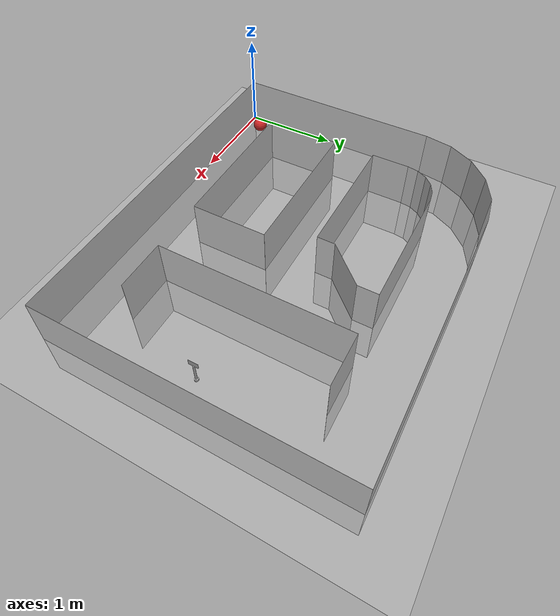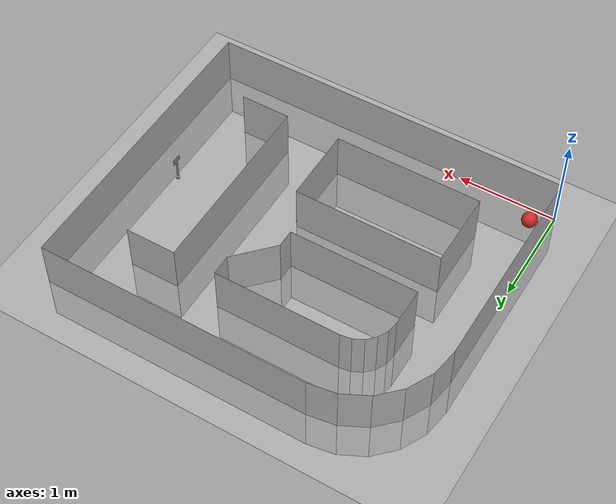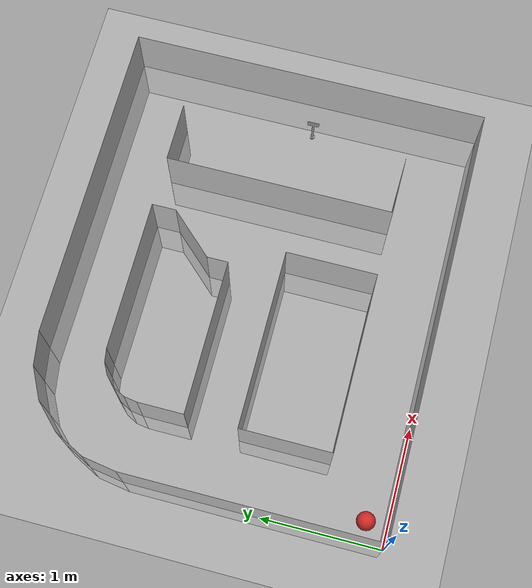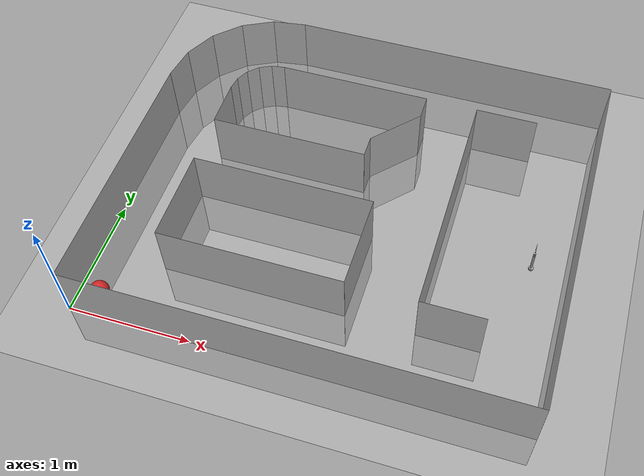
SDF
<sdf version="1.7">
 <world name="default">
  <light name="sun" type="directional">
   <pose>0 0 10 0 -0 0</pose>
   <diffuse>0.8 0.8 0.8 1</diffuse>
   <specular>0.1 0.1 0.1 1</specular>
   <attenuation>
    <range>1000</range>
    <constant>0.9</constant>
    <linear>0.01</linear>
    <quadratic>0.001</quadratic>
   </attenuation>
   <direction>-0.5 0.5 -1</direction>
   <spot><inner_angle>0</inner_angle><outer_angle>0</outer_angle><falloff>0</falloff></spot>
  </light>
  <model name="ground_plane">
   <static>1</static>
   <link name="link">
    <collision name="collision">
     <geometry><plane><normal>0 0 1</normal><size>100 100</size></plane></geometry>
     <surface><friction><ode><mu>100</mu><mu2>50</mu2></ode></friction></surface>
    </collision>
    <visual name="visual">
     <cast_shadows>0</cast_shadows>
     <geometry><plane><normal>0 0 1</normal><size>100 100</size></plane></geometry>
     <material>
      <script><uri>file://media/materials/scripts/gazebo.material</uri><name>Gazebo/Grey</name></script>
     </material>
    </visual>
   </link>
  </model>
  <model name="wall_0">
   <static>1</static>
   <link name="link">
    <collision name="collision"><geometry><box><size>2.1336 0.001 1</size></box></geometry></collision>
    <visual name="visual">
     <geometry><box><size>2.1336 0.001 1</size></box></geometry>
     <material>
      <script><name>Gazebo/White</name><uri>file://media/materials/scripts/gazebo.material</uri></script>
     </material>
    </visual>
   </link>
   <pose>0 1.0668 0 0 -0 1.5708</pose>
  </model>
  <model name="wall_1">
   <static>1</static>
   <link name="link">
    <collision name="collision"><geometry><box><size>0.286088 0.001 1</size></box></geometry></collision>
    <visual name="visual">
     <geometry><box><size>0.286088 0.001 1</size></box></geometry>
     <material>
      <script><name>Gazebo/White</name><uri>file://media/materials/scripts/gazebo.material</uri></script>
     </material>
    </visual>
   </link>
   <pose>0.022377 2.27489 0 0 -0 1.41372</pose>
  </model>
  <model name="wall_2">
   <static>1</static>
   <link name="link">
    <collision name="collision"><geometry><box><size>0.286088 0.001 1</size></box></geometry></collision>
    <visual name="visual">
     <geometry><box><size>0.286088 0.001 1</size></box></geometry>
     <material>
      <script><name>Gazebo/White</name><uri>file://media/materials/scripts/gazebo.material</uri></script>
     </material>
    </visual>
   </link>
   <pose>0.109695 2.54362 0 0 -0 1.09956</pose>
  </model>
  <model name="wall_3">
   <static>1</static>
   <link name="link">
    <collision name="collision"><geometry><box><size>0.286088 0.001 1</size></box></geometry></collision>
    <visual name="visual">
     <geometry><box><size>0.286088 0.001 1</size></box></geometry>
     <material>
      <script><name>Gazebo/White</name><uri>file://media/materials/scripts/gazebo.material</uri></script>
     </material>
    </visual>
   </link>
   <pose>0.275783 2.77222 0 0 -0 0.785398</pose>
  </model>
  <model name="wall_4">
   <static>1</static>
   <link name="link">
    <collision name="collision"><geometry><box><size>0.286088 0.001 1</size></box></geometry></collision>
    <visual name="visual">
     <geometry><box><size>0.286088 0.001 1</size></box></geometry>
     <material>
      <script><name>Gazebo/White</name><uri>file://media/materials/scripts/gazebo.material</uri></script>
     </material>
    </visual>
   </link>
   <pose>0.504383 2.93831 0 0 -0 0.471239</pose>
  </model>
  <model name="wall_5">
   <static>1</static>
   <link name="link">
    <collision name="collision"><geometry><box><size>0.286088 0.001 1</size></box></geometry></collision>
    <visual name="visual">
     <geometry><box><size>0.286088 0.001 1</size></box></geometry>
     <material>
      <script><name>Gazebo/White</name><uri>file://media/materials/scripts/gazebo.material</uri></script>
     </material>
    </visual>
   </link>
   <pose>0.773119 3.02563 0 0 -0 0.15708</pose>
  </model>
  <model name="wall_6">
   <static>1</static>
   <link name="link">
    <collision name="collision"><geometry><box><size>2.74321 0.001 1</size></box></geometry></collision>
    <visual name="visual">
     <geometry><box><size>2.74321 0.001 1</size></box></geometry>
     <material>
      <script><name>Gazebo/White</name><uri>file://media/materials/scripts/gazebo.material</uri></script>
     </material>
    </visual>
   </link>
   <pose>2.286 3.04801 0 0 -0 0</pose>
  </model>
  <model name="wall_7">
   <static>1</static>
   <link name="link">
    <collision name="collision"><geometry><box><size>3.04801 0.001 1</size></box></geometry></collision>
    <visual name="visual">
     <geometry><box><size>3.04801 0.001 1</size></box></geometry>
     <material>
      <script><name>Gazebo/White</name><uri>file://media/materials/scripts/gazebo.material</uri></script>
     </material>
    </visual>
   </link>
   <pose>3.65761 1.524 0 0 0 -1.5708</pose>
  </model>
  <model name="wall_8">
   <static>1</static>
   <link name="link">
    <collision name="collision"><geometry><box><size>3.65761 0.001 1</size></box></geometry></collision>
    <visual name="visual">
     <geometry><box><size>3.65761 0.001 1</size></box></geometry>
     <material>
      <script><name>Gazebo/White</name><uri>file://media/materials/scripts/gazebo.material</uri></script>
     </material>
    </visual>
   </link>
   <pose>1.8288 0 0 0 0 -3.14159</pose>
  </model>
  <model name="wall_9">
   <static>1</static>
   <link name="link">
    <collision name="collision"><geometry><box><size>0.762002 0.001 1</size></box></geometry></collision>
    <visual name="visual">
     <geometry><box><size>0.762002 0.001 1</size></box></geometry>
     <material>
      <script><name>Gazebo/White</name><uri>file://media/materials/scripts/gazebo.material</uri></script>
     </material>
    </visual>
   </link>
   <pose>0.558801 0.939802 0 0 -0 1.5708</pose>
  </model>
  <model name="wall_10">
   <static>1</static>
   <link name="link">
    <collision name="collision"><geometry><box><size>1.4986 0.001 1</size></box></geometry></collision>
    <visual name="visual">
     <geometry><box><size>1.4986 0.001 1</size></box></geometry>
     <material>
      <script><name>Gazebo/White</name><uri>file://media/materials/scripts/gazebo.material</uri></script>
     </material>
    </visual>
   </link>
   <pose>1.3081 1.3208 0 0 -0 0</pose>
  </model>
  <model name="wall_11">
   <static>1</static>
   <link name="link">
    <collision name="collision"><geometry><box><size>0.762002 0.001 1</size></box></geometry></collision>
    <visual name="visual">
     <geometry><box><size>0.762002 0.001 1</size></box></geometry>
     <material>
      <script><name>Gazebo/White</name><uri>file://media/materials/scripts/gazebo.material</uri></script>
     </material>
    </visual>
   </link>
   <pose>2.0574 0.939802 0 0 0 -1.5708</pose>
  </model>
  <model name="wall_12">
   <static>1</static>
   <link name="link">
    <collision name="collision"><geometry><box><size>1.4986 0.001 1</size></box></geometry></collision>
    <visual name="visual">
     <geometry><box><size>1.4986 0.001 1</size></box></geometry>
     <material>
      <script><name>Gazebo/White</name><uri>file://media/materials/scripts/gazebo.material</uri></script>
     </material>
    </visual>
   </link>
   <pose>1.3081 0.558801 0 0 0 -3.14159</pose>
  </model>
  <model name="wall_13">
   <static>1</static>
   <link name="link">
    <collision name="collision"><geometry><box><size>0.381001 0.001 1</size></box></geometry></collision>
    <visual name="visual">
     <geometry><box><size>0.381001 0.001 1</size></box></geometry>
     <material>
      <script><name>Gazebo/White</name><uri>file://media/materials/scripts/gazebo.material</uri></script>
     </material>
    </visual>
   </link>
   <pose>0.558801 1.9431 0 0 -0 1.5708</pose>
  </model>
  <model name="wall_14">
   <static>1</static>
   <link name="link">
    <collision name="collision"><geometry><box><size>0.111256 0.001 1</size></box></geometry></collision>
    <visual name="visual">
     <geometry><box><size>0.111256 0.001 1</size></box></geometry>
     <material>
      <script><name>Gazebo/White</name><uri>file://media/materials/scripts/gazebo.material</uri></script>
     </material>
    </visual>
   </link>
   <pose>0.567503 2.18855 0 0 -0 1.41372</pose>
  </model>
  <model name="wall_15">
   <static>1</static>
   <link name="link">
    <collision name="collision"><geometry><box><size>0.111256 0.001 1</size></box></geometry></collision>
    <visual name="visual">
     <geometry><box><size>0.111256 0.001 1</size></box></geometry>
     <material>
      <script><name>Gazebo/White</name><uri>file://media/materials/scripts/gazebo.material</uri></script>
     </material>
    </visual>
   </link>
   <pose>0.60146 2.29306 0 0 -0 1.09956</pose>
  </model>
  <model name="wall_16">
   <static>1</static>
   <link name="link">
    <collision name="collision"><geometry><box><size>0.111256 0.001 1</size></box></geometry></collision>
    <visual name="visual">
     <geometry><box><size>0.111256 0.001 1</size></box></geometry>
     <material>
      <script><name>Gazebo/White</name><uri>file://media/materials/scripts/gazebo.material</uri></script>
     </material>
    </visual>
   </link>
   <pose>0.66605 2.38196 0 0 -0 0.785398</pose>
  </model>
  <model name="wall_17">
   <static>1</static>
   <link name="link">
    <collision name="collision"><geometry><box><size>0.111256 0.001 1</size></box></geometry></collision>
    <visual name="visual">
     <geometry><box><size>0.111256 0.001 1</size></box></geometry>
     <material>
      <script><name>Gazebo/White</name><uri>file://media/materials/scripts/gazebo.material</uri></script>
     </material>
    </visual>
   </link>
   <pose>0.75495 2.44655 0 0 -0 0.471239</pose>
  </model>
  <model name="wall_18">
   <static>1</static>
   <link name="link">
    <collision name="collision"><geometry><box><size>0.111256 0.001 1</size></box></geometry></collision>
    <visual name="visual">
     <geometry><box><size>0.111256 0.001 1</size></box></geometry>
     <material>
      <script><name>Gazebo/White</name><uri>file://media/materials/scripts/gazebo.material</uri></script>
     </material>
    </visual>
   </link>
   <pose>0.859458 2.4805 0 0 -0 0.15708</pose>
  </model>
  <model name="wall_19">
   <static>1</static>
   <link name="link">
    <collision name="collision"><geometry><box><size>1.27 0.001 1</size></box></geometry></collision>
    <visual name="visual">
     <geometry><box><size>1.27 0.001 1</size></box></geometry>
     <material>
      <script><name>Gazebo/White</name><uri>file://media/materials/scripts/gazebo.material</uri></script>
     </material>
    </visual>
   </link>
   <pose>1.5494 2.48921 0 0 -0 0</pose>
  </model>
  <model name="wall_20">
   <static>1</static>
   <link name="link">
    <collision name="collision"><geometry><box><size>0.2032 0.001 1</size></box></geometry></collision>
    <visual name="visual">
     <geometry><box><size>0.2032 0.001 1</size></box></geometry>
     <material>
      <script><name>Gazebo/White</name><uri>file://media/materials/scripts/gazebo.material</uri></script>
     </material>
    </visual>
   </link>
   <pose>2.1844 2.38761 0 0 0 -1.5708</pose>
  </model>
  <model name="wall_21">
   <static>1</static>
   <link name="link">
    <collision name="collision"><geometry><box><size>0.485267 0.001 1</size></box></geometry></collision>
    <visual name="visual">
     <geometry><box><size>0.485267 0.001 1</size></box></geometry>
     <material>
      <script><name>Gazebo/White</name><uri>file://media/materials/scripts/gazebo.material</uri></script>
     </material>
    </visual>
   </link>
   <pose>2.0193 2.1082 0 0 0 -2.31917</pose>
  </model>
  <model name="wall_22">
   <static>1</static>
   <link name="link">
    <collision name="collision"><geometry><box><size>0.1778 0.001 1</size></box></geometry></collision>
    <visual name="visual">
     <geometry><box><size>0.1778 0.001 1</size></box></geometry>
     <material>
      <script><name>Gazebo/White</name><uri>file://media/materials/scripts/gazebo.material</uri></script>
     </material>
    </visual>
   </link>
   <pose>1.8542 1.8415 0 0 0 -1.5708</pose>
  </model>
  <model name="wall_23">
   <static>1</static>
   <link name="link">
    <collision name="collision"><geometry><box><size>1.2954 0.001 1</size></box></geometry></collision>
    <visual name="visual">
     <geometry><box><size>1.2954 0.001 1</size></box></geometry>
     <material>
      <script><name>Gazebo/White</name><uri>file://media/materials/scripts/gazebo.material</uri></script>
     </material>
    </visual>
   </link>
   <pose>1.2065 1.7526 0 0 0 -3.14159</pose>
  </model>
  <model name="wall_24">
   <static>1</static>
   <link name="link">
    <collision name="collision"><geometry><box><size>0.508001 0.001 1</size></box></geometry></collision>
    <visual name="visual">
     <geometry><box><size>0.508001 0.001 1</size></box></geometry>
     <material>
      <script><name>Gazebo/White</name><uri>file://media/materials/scripts/gazebo.material</uri></script>
     </material>
    </visual>
   </link>
   <pose>2.87021 2.48921 0 0 -0 0</pose>
  </model>
  <model name="wall_25">
   <static>1</static>
   <link name="link">
    <collision name="collision"><geometry><box><size>0.508001 0.001 1</size></box></geometry></collision>
    <visual name="visual">
     <geometry><box><size>0.508001 0.001 1</size></box></geometry>
     <material>
      <script><name>Gazebo/White</name><uri>file://media/materials/scripts/gazebo.material</uri></script>
     </material>
    </visual>
   </link>
   <pose>2.87021 0.558801 0 0 0 -3.14159</pose>
  </model>
  <model name="wall_26">
   <static>1</static>
   <link name="link">
    <collision name="collision"><geometry><box><size>1.9304 0.001 1</size></box></geometry></collision>
    <visual name="visual">
     <geometry><box><size>1.9304 0.001 1</size></box></geometry>
     <material>
      <script><name>Gazebo/White</name><uri>file://media/materials/scripts/gazebo.material</uri></script>
     </material>
    </visual>
   </link>
   <pose>2.6162 1.524 0 0 -0 1.5708</pose>
  </model>
  <model name="flag">
   <link name="plate">
    <pose>0 0 0.2425 0 -0 0</pose>
    <collision name="collision">
     <geometry><box><size>0.001 0.1 0.065</size></box></geometry>
     <surface><friction><ode><mu>1</mu><mu2>1</mu2></ode></friction></surface>
    </collision>
    <visual name="visual"><geometry><box><size>0.001 0.1 0.065</size></box></geometry></visual>
    <inertial>
     <inertia><ixx>0.1</ixx><ixy>0</ixy><ixz>0</ixz><iyy>0.1</iyy><iyz>0</iyz><izz>0.1</izz></inertia>
     <mass>0.1</mass>
    </inertial>
   </link>
   <link name="pole">
    <pose>0 0 0.11 0 -0 0</pose>
    <collision name="collision">
     <geometry><cylinder><radius>0.01</radius><length>0.2</length></cylinder></geometry>
     <surface>
      <friction><torsional><coefficient>1</coefficient></torsional><ode><mu>1</mu><mu2>1</mu2></ode></friction>
     </surface>
    </collision>
    <visual name="visual">
     <geometry><cylinder><radius>0.01</radius><length>0.2</length></cylinder></geometry>
    </visual>
    <inertial>
     <inertia><ixx>1</ixx><ixy>0</ixy><ixz>0</ixz><iyy>1</iyy><iyz>0</iyz><izz>1</izz></inertia>
     <mass>1</mass>
    </inertial>
   </link>
   <link name="base">
    <collision name="collision">
     <geometry><cylinder><radius>0.02</radius><length>0.02</length></cylinder></geometry>
     <surface><friction><ode><mu>0.01</mu><mu2>0.01</mu2></ode></friction></surface>
    </collision>
    <visual name="visual">
     <geometry><cylinder><radius>0.02</radius><length>0.02</length></cylinder></geometry>
    </visual>
    <inertial>
     <inertia><ixx>0.1</ixx><ixy>0</ixy><ixz>0</ixz><iyy>0.1</iyy><iyz>0</iyz><izz>0.1</izz></inertia>
     <mass>0.1</mass>
    </inertial>
    <gravity>0</gravity>
   </link>
   <joint name="base_pole" type="fixed">
    <parent>base</parent>
    <child>pole</child>
    <pose>0 0 0.02 0 -0 0</pose>
   </joint>
   <joint name="pole_plate" type="fixed">
    <parent>pole</parent>
    <child>plate</child>
    <pose>0 0 0.1 0 -0 0</pose>
   </joint>
   <pose>3.35 1.40312 0.010011 -0.000583 0.000283 -3.13436</pose>
  </model>
  <gravity>0 0 -9.8</gravity>
  <magnetic_field>6e-06 2.3e-05 -4.2e-05</magnetic_field>
  <atmosphere type="adiabatic"/>
  <physics name="default_physics" default="0" type="ode">
   <max_step_size>0.001</max_step_size>
   <real_time_factor>1</real_time_factor>
   <real_time_update_rate>1000</real_time_update_rate>
  </physics>
  <scene><ambient>0.4 0.4 0.4 1</ambient><background>0.7 0.7 0.7 1</background><shadows>1</shadows></scene>
  <spherical_coordinates>
   <surface_model>EARTH_WGS84</surface_model>
   <latitude_deg>0</latitude_deg>
   <longitude_deg>0</longitude_deg>
   <elevation>0</elevation>
   <heading_deg>0</heading_deg>
  </spherical_coordinates>
  <model name="cricket_ball_big">
   <link name="link">
    <pose>0 0 0.0375 0 -0 0</pose>
    <inertial>
     <mass>0.1467</mass>
     <inertia>
      <ixx>8.252e-05</ixx>
      <ixy>0</ixy>
      <ixz>0</ixz>
      <iyy>8.252e-05</iyy>
      <iyz>0</iyz>
      <izz>8.252e-05</izz>
     </inertia>
    </inertial>
    <velocity_decay><linear>0</linear><angular>0.005</angular></velocity_decay>
    <visual name="visual">
     <geometry><sphere><radius>0.0775</radius></sphere></geometry>
     <material>
      <script><uri>file://media/materials/scripts/gazebo.material</uri><name>Gazebo/Red</name></script>
      <shader type="pixel"><normal_map>__default__</normal_map></shader>
      <ambient>1 0 0 1</ambient>
      <diffuse>1 0 0 1</diffuse>
      <specular>0.1 0.1 0.1 1</specular>
      <emissive>0 0 0 1</emissive>
     </material>
    </visual>
    <collision name="collision">
     <geometry><sphere><radius>0.0775</radius></sphere></geometry>
     <surface>
      <friction>
       <ode><mu>1</mu><mu2>1</mu2><fdir1>0 0 0</fdir1><slip1>0</slip1><slip2>0</slip2></ode>
       <torsional>
        <coefficient>1</coefficient>
        <patch_radius>0</patch_radius>
        <surface_radius>0.01</surface_radius>
        <use_patch_radius>0</use_patch_radius>
        <ode><slip>0</slip></ode>
       </torsional>
      </friction>
      <bounce><restitution_coefficient>0</restitution_coefficient><threshold>1e+06</threshold></bounce>
      <contact>
       <collide_without_contact>0</collide_without_contact>
       <collide_without_contact_bitmask>1</collide_without_contact_bitmask>
       <collide_bitmask>1</collide_bitmask>
       <ode>
        <soft_cfm>0</soft_cfm>
        <soft_erp>0.2</soft_erp>
        <kp>100000</kp>
        <kd>100</kd>
        <max_vel>100</max_vel>
        <min_depth>0.001</min_depth>
       </ode>
       <bullet>
        <split_impulse>1</split_impulse>
        <split_impulse_penetration_threshold>-0.01</split_impulse_penetration_threshold>
        <soft_cfm>0</soft_cfm>
        <soft_erp>0.2</soft_erp>
        <kp>100000</kp>
        <kd>100</kd>
       </bullet>
      </contact>
     </surface>
    </collision>
   </link>
   <static>0</static>
   <pose>0.182971 0.182592 0.038986 0 -0 0</pose>
  </model>
 </world>
</sdf>
